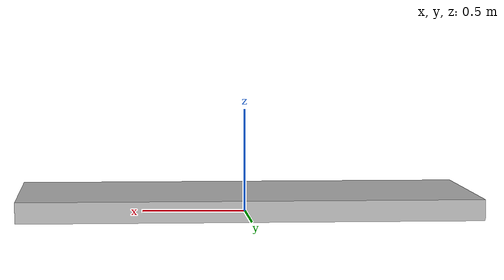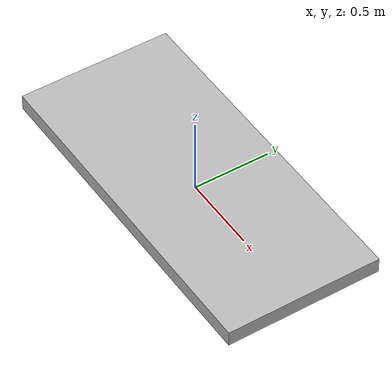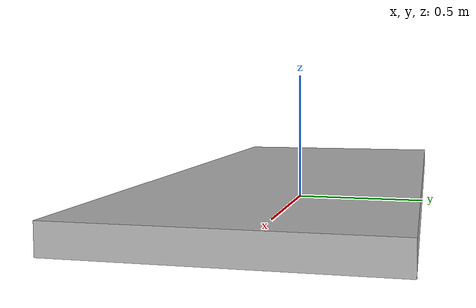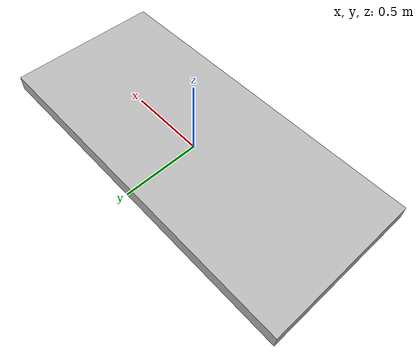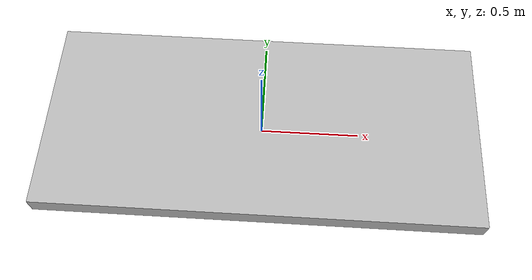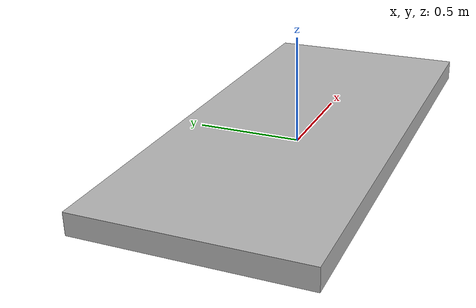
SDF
<?xml version="1.0" ?>
<!-- |    This document was autogenerated by xacro from /home/user/projects/wasp/gz/models/prismatic_demo/model.sdf.xacro | -->
<!-- |    EDITING THIS FILE BY HAND IS NOT RECOMMENDED                                 | -->
<sdf version="1.5">
  <model name="prismatic_joint">
    <link name="heavy_base">
      <!-- position the base such that the bottom touches the floor -->
      <pose>0 0 0.05 0 0 0</pose>
      <inertial>
        <mass>100</mass>
        <!-- kg -->
        <inertia>
          <!-- (mass / 12) * (y*y + z*z) -->
          <ixx>8.4167</ixx>
          <ixy>0</ixy>
          <ixz>0</ixz>
          <!-- (mass / 12) * (x*x + z*z) -->
          <iyy>40.417</iyy>
          <iyz>0</iyz>
          <!-- (mass / 12) * (y*y + x*x) -->
          <izz>48.667</izz>
        </inertia>
      </inertial>
      <!-- Same geometry as visual -->
      <collision name="heavy_base_collision">
        <geometry>
          <box>
            <size>2.2 1 0.1</size>
          </box>
        </geometry>
      </collision>
      <!-- Same geometry as collision -->
      <visual name="heavy_base_visual">
        <geometry>
          <box>
            <size>2.2 1 0.1</size>
          </box>
        </geometry>
        <material>
          <script>
            <uri>model://demo_joint_types/materials/scripts</uri>
            <uri>model://demo_joint_types/materials/textures</uri>
            <name>demo_joint_types/legend</name>
          </script>
        </material>
      </visual>
    </link>
  </model>
</sdf>
